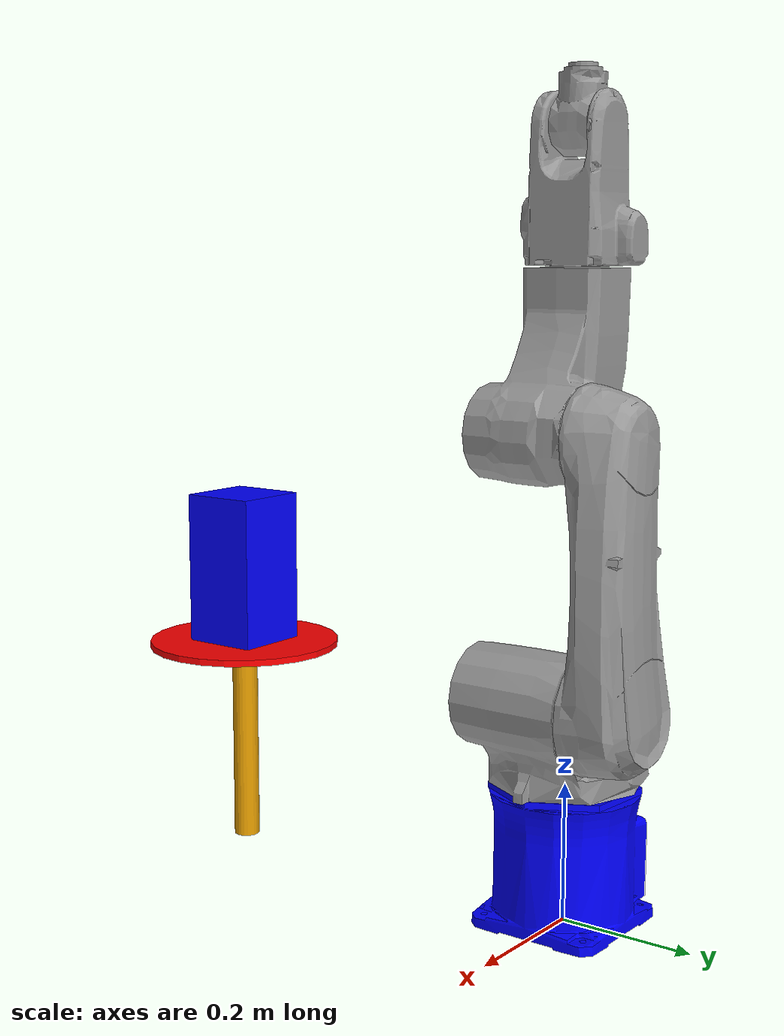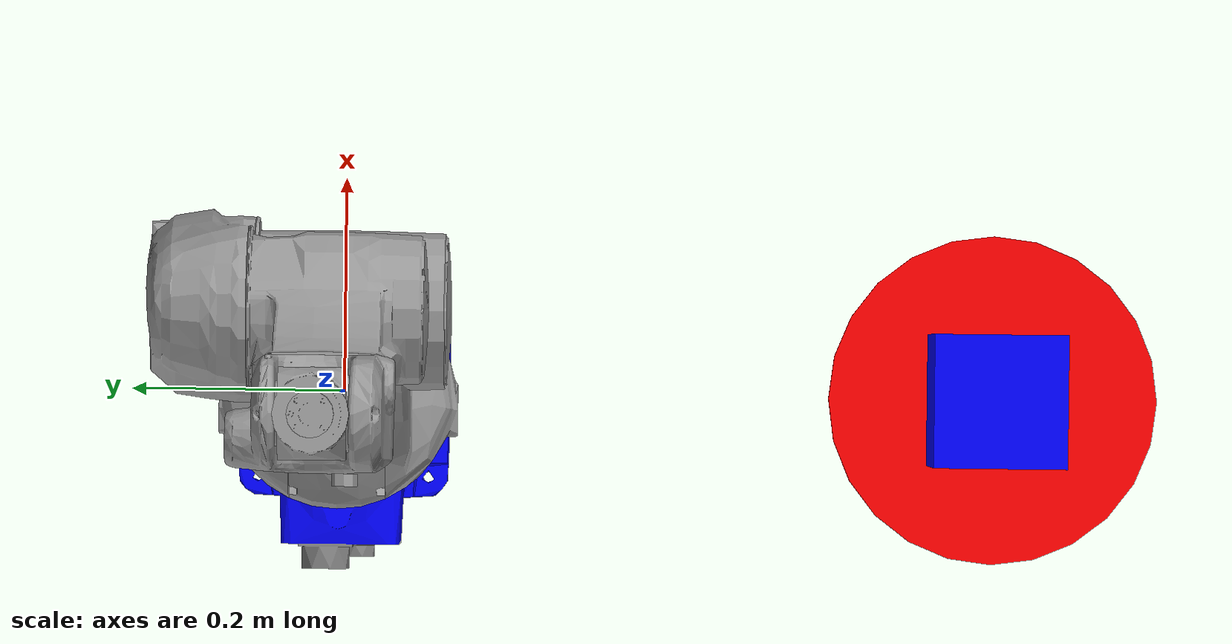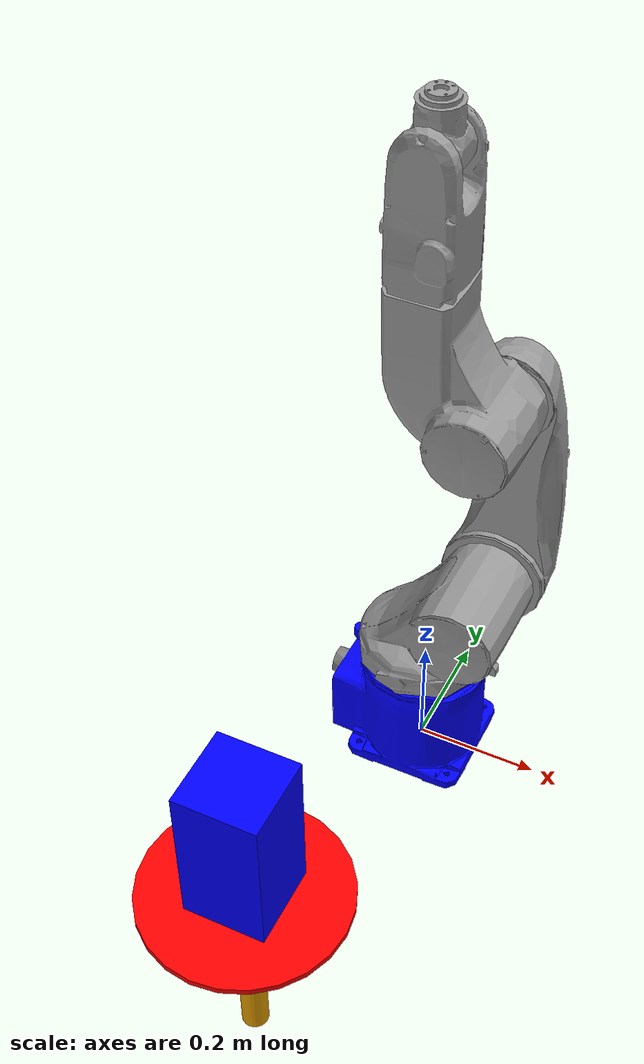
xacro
<?xml version="1.0" ?>
<robot name="scan_pro_robot" xmlns:xacro="http://www.ros.org/wiki/xacro">

	<gazebo>
        <plugin name="gazebo_ros_control" filename="libgazebo_ros_control.so">
            <robotNamespace>/scan_pro_robot</robotNamespace>
			<controlPeriod>0.001</controlPeriod>
			<legacyModeNS>false</legacyModeNS>
        </plugin>
    </gazebo>

	<link name="world"/>

	<joint name="joint_w" type="fixed">
		<parent link="world"/>
		<child link="base_link"/>
		<origin xyz="0 0 0"/>
	</joint>

	<link name="base_link">
		<visual>
			<origin rpy="0 0 0" xyz="0 0 0"/>
			<geometry>
				<mesh filename="package://planning_prm/meshes/base_link.dae" scale="1 1 1"/>
			</geometry>
		</visual>
		<collision>
			<origin rpy="0 0 0" xyz="0 0 0"/>
			<geometry>
				<mesh filename="package://planning_prm/meshes/base_link.dae" scale="1 1 1"/>
			</geometry>
		</collision>
		<inertial>
			<mass value="1"/>
			<origin rpy="0.000000 0.000000 0.000000" xyz="0.000000 0.000000 0.000000"/>
			<inertia ixx="1" ixy="0" ixz="0" iyy="1" iyz="0" izz="1"/>
		</inertial>
	</link>
	<link name="J1">
		<visual>
			<origin rpy="0 0 0" xyz="0 0 0"/>
			<geometry>
				<mesh filename="package://planning_prm/meshes/J1.dae" scale="1 1 1"/>
			</geometry>
		</visual>
		<collision>
			<origin rpy="0 0 0" xyz="0 0 0"/>
			<geometry>
				<mesh filename="package://planning_prm/meshes/J1.dae" scale="1 1 1"/>
			</geometry>
		</collision>
		<inertial>
			<mass value="1"/>
			<origin rpy="0.000000 0.000000 0.000000" xyz="0.000000 0.000000 0.000000"/>
			<inertia ixx="1" ixy="0" ixz="0" iyy="1" iyz="0" izz="1"/>
		</inertial>
	</link>
	<link name="J2">
		<visual>
			<origin rpy="0 0 0" xyz="0 0 0"/>
			<geometry>
				<mesh filename="package://planning_prm/meshes/J2.dae" scale="1 1 1"/>
			</geometry>
		</visual>
		<collision>
			<origin rpy="0 0 0" xyz="0 0 0"/>
			<geometry>
				<mesh filename="package://planning_prm/meshes/J2.dae" scale="1 1 1"/>
			</geometry>
		</collision>
		<inertial>
			<mass value="1"/>
			<origin rpy="0.000000 0.000000 0.000000" xyz="0.000000 0.000000 0.000000"/>
			<inertia ixx="1" ixy="0" ixz="0" iyy="1" iyz="0" izz="1"/>
		</inertial>
	</link>
	<link name="J3">
		<visual>
			<origin rpy="0 0 0" xyz="0 0 0"/>
			<geometry>
				<mesh filename="package://planning_prm/meshes/J3.dae" scale="1 1 1"/>
			</geometry>
		</visual>
		<collision>
			<origin rpy="0 0 0" xyz="0 0 0"/>
			<geometry>
				<mesh filename="package://planning_prm/meshes/J3.dae" scale="1 1 1"/>
			</geometry>
		</collision>
		<inertial>
			<mass value="1"/>
			<origin rpy="0.000000 0.000000 0.000000" xyz="0.000000 0.000000 0.000000"/>
			<inertia ixx="1" ixy="0" ixz="0" iyy="1" iyz="0" izz="1"/>
		</inertial>
	</link>
	<link name="J4">
		<visual>
			<origin rpy="0 0 0" xyz="0 0 0"/>
			<geometry>
				<mesh filename="package://planning_prm/meshes/J4.dae" scale="1 1 1"/>
			</geometry>
		</visual>
		<collision>
			<origin rpy="0 0 0" xyz="0 0 0"/>
			<geometry>
				<mesh filename="package://planning_prm/meshes/J4.dae" scale="1 1 1"/>
			</geometry>
		</collision>
		<inertial>
			<mass value="1"/>
			<origin rpy="0.000000 0.000000 0.000000" xyz="0.000000 0.000000 0.000000"/>
			<inertia ixx="1" ixy="0" ixz="0" iyy="1" iyz="0" izz="1"/>
		</inertial>
	</link>
	<link name="J5">
		<visual>
			<origin rpy="0 0 0" xyz="0 0 0"/>
			<geometry>
				<mesh filename="package://planning_prm/meshes/J5.dae" scale="1 1 1"/>
			</geometry>
		</visual>
		<collision>
			<origin rpy="0 0 0" xyz="0 0 0"/>
			<geometry>
				<mesh filename="package://planning_prm/meshes/J5.dae" scale="1 1 1"/>
			</geometry>
		</collision>
		<inertial>
			<mass value="1"/>
			<origin rpy="0.000000 0.000000 0.000000" xyz="0.000000 0.000000 0.000000"/>
			<inertia ixx="1" ixy="0" ixz="0" iyy="1" iyz="0" izz="1"/>
		</inertial>
	</link>
	<link name="J6">
		<visual>
			<origin rpy="0 0 0" xyz="0 0 0"/>
			<geometry>
				<mesh filename="package://planning_prm/meshes/J6.dae" scale="1 1 1"/>
			</geometry>
		</visual>
		<collision>
			<origin rpy="0 0 0" xyz="0 0 0"/>
			<geometry>
				<mesh filename="package://planning_prm/meshes/J6.dae" scale="1 1 1"/>
			</geometry>
		</collision>
		<inertial>
			<mass value="1"/>
			<origin rpy="0.000000 0.000000 0.000000" xyz="0.000000 0.000000 0.000000"/>
			<inertia ixx="1" ixy="0" ixz="0" iyy="1" iyz="0" izz="1"/>
		</inertial>
	</link>

	<gazebo reference="base_link">
		<material>Gazebo/CoM</material>
	</gazebo>
	<gazebo reference="J1">
		<material>Gazebo/Gray</material>
	</gazebo>
	<gazebo reference="J2">
		<material>Gazebo/Gray</material>
	</gazebo>
	<gazebo reference="J3">
		<material>Gazebo/Gray</material>
	</gazebo>
	<gazebo reference="J4">
		<material>Gazebo/Gray</material>
	</gazebo>
	<gazebo reference="J5">
		<material>Gazebo/Gray</material>
	</gazebo>
	<gazebo reference="J6">
		<material>Gazebo/Gray</material>
	</gazebo>
	<gazebo reference="EEF_tool_mount">
		<material>Gazebo/CoM</material>
	</gazebo>

	<gazebo>
		<gravity>False</gravity>
	</gazebo>
	<joint name="joint_1" type="revolute">
		<parent link="base_link"/>
		<child link="J1"/>
		<origin rpy="0.000000 0.000000 0.000000" xyz="0.000000 0.000000 0.000000"/>
		<axis xyz="-0.000000 -0.000000 1.000000"/>
		<limit effort="100" lower="-2.96706" upper="2.96706" velocity="1"/>
		<dynamics damping="0" friction="0"/>
	</joint>

	<joint name="joint_2" type="revolute">
		<parent link="J1"/>
		<child link="J2"/>
		<origin rpy="0.000000 0.000000 0.000000" xyz="0.075000 0.000000 0.335000"/>
		<axis xyz="-0.000000 1.000000 -0.000000"/>
		<limit effort="100" lower="-1.745329" upper="2.356194" velocity="1"/>
		<dynamics damping="0" friction="0"/>
	</joint>

	<joint name="joint_3" type="revolute">
		<parent link="J2"/>
		<child link="J3"/>
		<origin rpy="0.000000 0.000000 0.000000" xyz="0.000000 0.000000 0.365000"/>
		<axis xyz="-0.000000 1.000000 -0.000000"/>
		<limit effort="100" lower="-2.076942" upper="2.949606" velocity="1"/>
		<dynamics damping="0" friction="0"/>
	</joint>

	<joint name="joint_4" type="revolute">
		<parent link="J3"/>
		<child link="J4"/>
		<origin rpy="0.000000 0.000000 0.000000" xyz="-0.090000 0.000000 -0.700000"/>
		<axis xyz="-0.000000 -0.000000 1.000000"/>
		<limit effort="100" lower="-3.316126" upper="3.316126" velocity="1"/>
		<dynamics damping="0" friction="0"/>
	</joint>

	<joint name="joint_5" type="revolute">
		<parent link="J4"/>
		<child link="J5"/>
		<origin rpy="0.000000 0.000000 0.000000" xyz="0.000000 0.000000 1.105000"/>
		<axis xyz="-0.000000 1.000000 -0.000000"/>
		<limit effort="100" lower="-2.094395" upper="2.094395" velocity="1"/>
		<dynamics damping="0" friction="0"/>
	</joint>

	<joint name="joint_6" type="revolute">
		<parent link="J5"/>
		<child link="J6"/>
		<origin rpy="0.000000 0.000000 0.000000" xyz="0.000000 0.000000 0.080000"/>
		<axis xyz="-0.000000 -0.000000 1.000000"/>
		<limit effort="100" lower="-6.283185" upper="6.283185" velocity="1"/>
		<dynamics damping="0" friction="0"/>
	</joint>

    <link name="turntable_base">
        <visual>
            <origin rpy="0 0 0" xyz="0 0 0" />
            <geometry>
                <cylinder length=".32" radius=".02" />
            </geometry>
        </visual>
        <collision>
            <origin rpy="0 0 0" xyz="0 0 0" />
            <geometry>
                <cylinder length=".32" radius=".02" />
            </geometry>
        </collision>

<inertial>
            <origin rpy="0 0 0" xyz="0 0 0" />
            <mass value="1" />
            <inertia ixx="100" ixy="0" ixz="0" iyy="100" iyz="0" izz="100" />
        </inertial>

    </link>
    <link name="turntable_plate">
        <visual>
            <origin rpy="0 0 0" xyz="0 0 0" />
            <geometry>
                <cylinder length=".01" radius=".15" />
            </geometry>
            <material name="Red">
                <color rgba="1.0 0 0 1.0" />
            </material>
        </visual>
        <collision>
            <origin rpy="0 0 0" xyz="0 0 0" />
            <geometry>
                <cylinder length=".01" radius=".15" />
            </geometry>
        </collision>

<inertial>
            <origin rpy="0 0 0" xyz="0 0 0" />
            <mass value="1" />
            <inertia ixx="100" ixy="0" ixz="0" iyy="100" iyz="0" izz="100" />
        </inertial>

    </link>
	<link name="box">
        <visual>
            <origin rpy="0 0 0" xyz="0 0 0" />
            <geometry>
                <box size="0.12 0.12 0.24" />
            </geometry>
            <material name="Blue">
                <color rgba="0 0 1.0 1.0" />
            </material>
        </visual>
        <collision>
            <origin rpy="0 0 0" xyz="0 0 0" />
            <geometry>
                <box size="0.12 0.12 0.24" />
            </geometry>
        </collision>

<inertial>
            <origin rpy="0 0 0" xyz="0 0 0" />
            <mass value="1" />
            <inertia ixx="100" ixy="0" ixz="0" iyy="100" iyz="0" izz="100" />
        </inertial>

    </link>
    <joint name="turntable_joint" type="fixed">
        <parent link="world" />
        <child link="turntable_base" />
        <origin rpy="0 0 0" xyz="0 -.6 0.16" />
    </joint>
    <joint name="turntable_revolve_joint" type="continuous">
        <parent link="turntable_base" />
        <child link="turntable_plate" />
        <origin rpy="0.000000 0.000000 0.000000" xyz="0.000000 0.000000 .16" />
        <limit effort="1000.0" velocity="0.5" />
        <axis xyz="0 0 1" />
    </joint>

	<joint name="box_joint" type="fixed">
		<parent link="turntable_plate" />
		<child link="box" />
		<origin rpy="0 0 0" xyz="0 0 0.12"/>
	</joint>

    <transmission name="trans_turntable_revolve_joint">
        <type>transmission_interface/SimpleTransmission</type>
        <joint name="turntable_revolve_joint">
            <hardwareInterface>hardware_interface/PositionJointInterface</hardwareInterface>
        </joint>
        <actuator name="turntable_revolve_joint_motor">
            <hardwareInterface>hardware_interface/PositionJointInterface</hardwareInterface>
            <mechanicalReduction>1</mechanicalReduction>
        </actuator>
    </transmission>

		<transmission name="trans_1">
		<type>transmission_interface/SimpleTransmission</type>
		<joint name="joint_1">
			<hardwareInterface>hardware_interface/PositionJointInterface</hardwareInterface>
		</joint>
		<actuator name="motor_1">
			<hardwareInterface>hardware_interface/PositionJointInterface</hardwareInterface>
			<mechanicalReduction>1</mechanicalReduction>
		</actuator>
	</transmission>

	<transmission name="trans_2">
		<type>transmission_interface/SimpleTransmission</type>
		<joint name="joint_2">
			<hardwareInterface>hardware_interface/PositionJointInterface</hardwareInterface>
		</joint>
		<actuator name="motor_2">
			<hardwareInterface>hardware_interface/PositionJointInterface</hardwareInterface>
			<mechanicalReduction>1</mechanicalReduction>
		</actuator>
	</transmission>

	<transmission name="trans_3">
		<type>transmission_interface/SimpleTransmission</type>
		<joint name="joint_3">
			<hardwareInterface>hardware_interface/PositionJointInterface</hardwareInterface>
		</joint>
		<actuator name="motor_3">
			<hardwareInterface>hardware_interface/PositionJointInterface</hardwareInterface>
			<mechanicalReduction>1</mechanicalReduction>
		</actuator>
	</transmission>

	<transmission name="trans_4">
		<type>transmission_interface/SimpleTransmission</type>
		<joint name="joint_4">
			<hardwareInterface>hardware_interface/PositionJointInterface</hardwareInterface>
		</joint>
		<actuator name="motor_4">
			<hardwareInterface>hardware_interface/PositionJointInterface</hardwareInterface>
			<mechanicalReduction>1</mechanicalReduction>
		</actuator>
	</transmission>

	<transmission name="trans_5">
		<type>transmission_interface/SimpleTransmission</type>
		<joint name="joint_5">
			<hardwareInterface>hardware_interface/PositionJointInterface</hardwareInterface>
		</joint>
		<actuator name="motor_5">
			<hardwareInterface>hardware_interface/PositionJointInterface</hardwareInterface>
			<mechanicalReduction>1</mechanicalReduction>
		</actuator>
	</transmission>

	<transmission name="trans_6">
		<type>transmission_interface/SimpleTransmission</type>
		<joint name="joint_6">
			<hardwareInterface>hardware_interface/PositionJointInterface</hardwareInterface>
		</joint>
		<actuator name="motor_6">
			<hardwareInterface>hardware_interface/PositionJointInterface</hardwareInterface>
			<mechanicalReduction>1</mechanicalReduction>
		</actuator>
	</transmission>

</robot>
